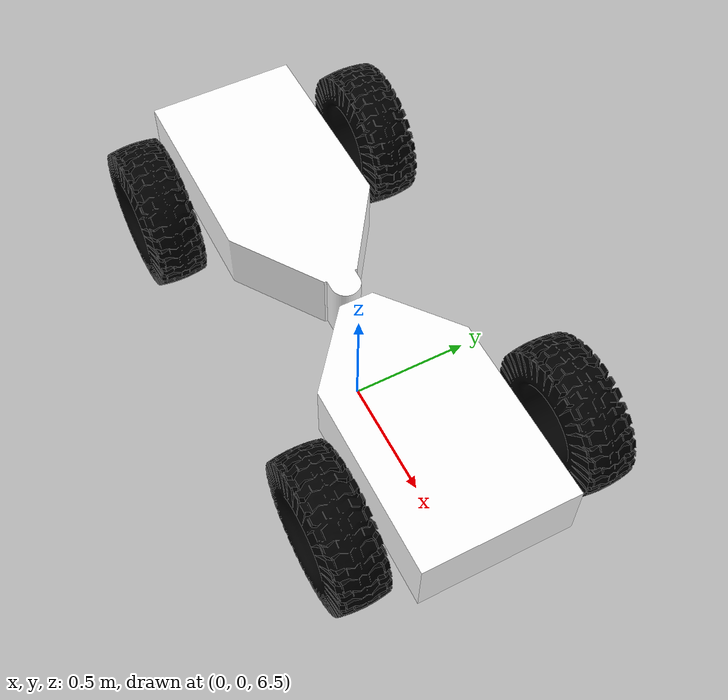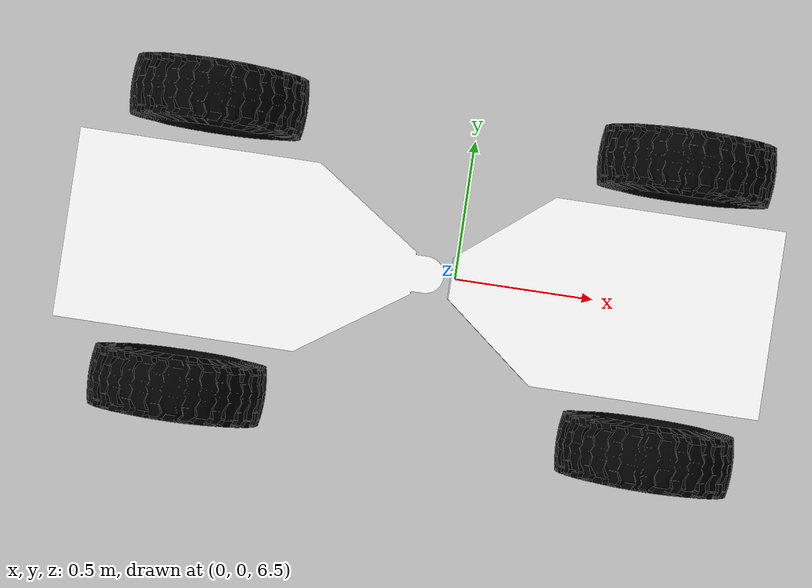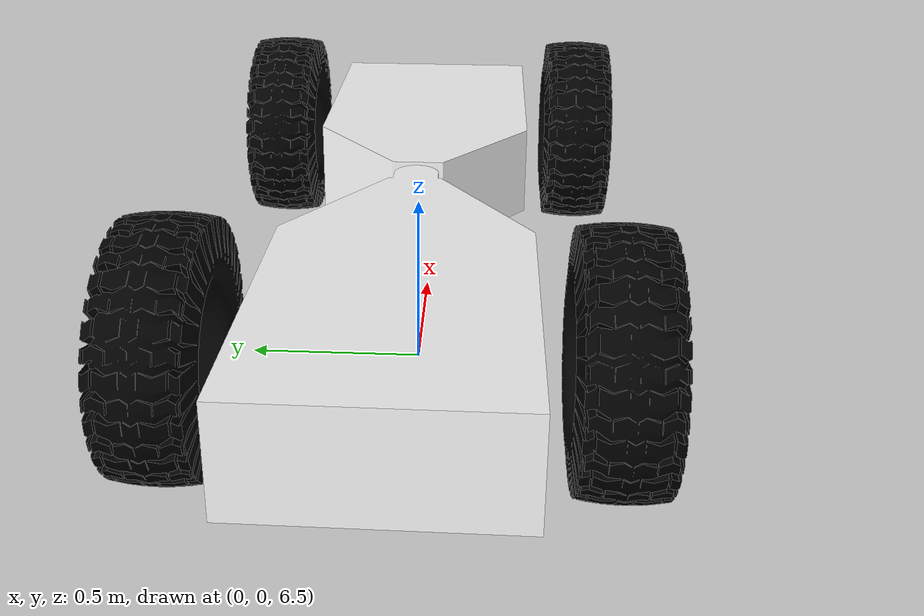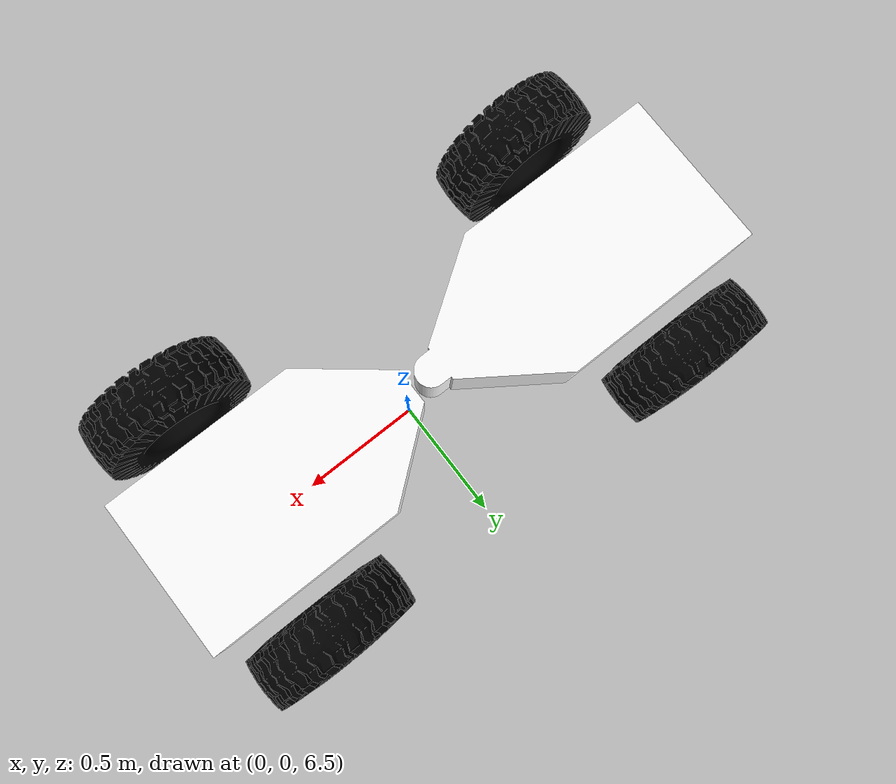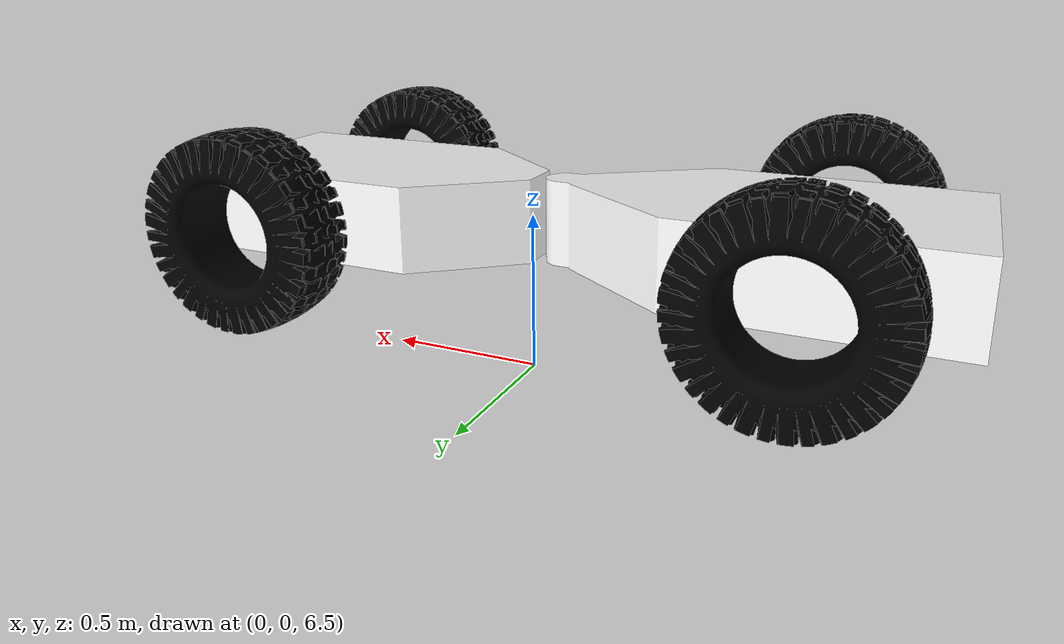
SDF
<sdf version="1.6">
 <world name="Terrain_world">
  <physics name="1ms" type="ignored"><dart><collision_detector>bullet</collision_detector></dart></physics>
  <light type="directional" name="sun">
   <pose>0 0 10 0 0 0</pose>
   <diffuse>0.8 0.8 0.8 1</diffuse>
   <specular>0.2 0.2 0.2 1</specular>
   <attenuation>
    <range>1000</range>
    <constant>0.9</constant>
    <linear>0.01</linear>
    <quadratic>0.001</quadratic>
   </attenuation>
   <direction>-0.5 0.1 -0.9</direction>
  </light>
  <plugin filename="ignition-gazebo-physics-system" name="ignition::gazebo::systems::Physics"/>
  <plugin filename="ignition-gazebo-user-commands-system" name="ignition::gazebo::systems::UserCommands"/>
  <plugin filename="ignition-gazebo-scene-broadcaster-system" name="ignition::gazebo::systems::SceneBroadcaster"/>
  <include><pose>0 0 7 0 0 0</pose><uri>model://wagon</uri></include>
 </world>
</sdf>

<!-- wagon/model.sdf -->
<sdf version='1.9'>
  <model name='wagon'>
    <link name='base_footprint'>
      <inertial>
        <pose>0.5528 0 0 0 0 0</pose>
        <mass>135.5</mass>
        <inertia>
          <ixx>21.228999999999999</ixx>
          <ixy>0</ixy>
          <ixz>0.0090000000000009205</ixz>
          <iyy>17.996999999999989</iyy>
          <iyz>0</iyz>
          <izz>6.188999999999993</izz>
        </inertia>
      </inertial>
      <collision name='base_footprint_fixed_joint_lump__base_link_collision'>
        <pose>0.5075 0 0 0 0 0</pose>
        <geometry>
          <box>
            <size>1.055 0.62 0.26</size>
          </box>
        </geometry>
      </collision>
      <visual name='base_footprint_fixed_joint_lump__base_link_visual'>
        <pose>0.6948 0 0 0 0 1.57</pose>
        <geometry>
          <mesh>
            <scale>0.001 0.001 0.001</scale>
            <uri>/home/daniel/master_ws/install/wagon_description/share/wagon_description/meshes/bases/Simplified_Front_Centered.stl</uri>
          </mesh>
        </geometry>
        <material>
          <diffuse>1 1 1 1</diffuse>
          <ambient>1 1 1 1</ambient>
        </material>
      </visual>
    </link>
    <joint name='hydrolic_joint' type='revolute'>
      <pose relative_to='base_footprint'>-0.08499999999999996 0 0 0 0 0</pose>
      <parent>base_footprint</parent>
      <child>hydrolic_link</child>
      <axis>
        <xyz>0 0 1</xyz>
        <limit>
          <lower>-0.55000000000000004</lower>
          <upper>0.55000000000000004</upper>
          <effort>1000</effort>
          <velocity>0.5</velocity>
        </limit>
        <dynamics>
          <spring_reference>0</spring_reference>
          <spring_stiffness>0</spring_stiffness>
        </dynamics>
      </axis>
    </joint>
    <link name='hydrolic_link'>
      <pose relative_to='hydrolic_joint'>0 0 0 0 0 0</pose>
      <inertial>
        <pose>-0.6446000000000001 0 0 0 0 0</pose>
        <mass>140.5</mass>
        <inertia>
          <ixx>6.1890000000000001</ixx>
          <ixy>0</ixy>
          <ixz>-0.0089999999999999993</ixz>
          <iyy>17.996999999999989</iyy>
          <iyz>0</iyz>
          <izz>21.228999999999989</izz>
        </inertia>
      </inertial>
      <collision name='hydrolic_link_fixed_joint_lump__rear_link_collision'>
        <pose>-0.6966000000000001 0 0 0 0 0</pose>
        <geometry>
          <box>
            <size>1.02 0.62 0.26</size>
          </box>
        </geometry>
      </collision>
      <visual name='hydrolic_link_fixed_joint_lump__rear_link_visual'>
        <pose>-0.7866000000000001 0 0 0 0 1.57</pose>
        <geometry>
          <mesh>
            <scale>0.001 0.001 0.001</scale>
            <uri>/home/daniel/master_ws/install/wagon_description/share/wagon_description/meshes/bases/Simplified_Back_Centered.stl</uri>
          </mesh>
        </geometry>
        <material>
          <diffuse>1 1 1 1</diffuse>
          <ambient>1 1 1 1</ambient>
        </material>
      </visual>
    </link>
    <joint name='wheel_rear_left_joint' type='revolute'>
      <pose relative_to='hydrolic_link'>-0.7866000000000001 0.4815 0 0 0 0</pose>
      <parent>hydrolic_link</parent>
      <child>wheel_rear_left_link</child>
      <axis>
        <xyz>0 1 0</xyz>
        <limit>
          <lower>-10000000000000000</lower>
          <upper>10000000000000000</upper>
        </limit>
        <dynamics>
          <spring_reference>0</spring_reference>
          <spring_stiffness>0</spring_stiffness>
        </dynamics>
      </axis>
    </joint>
    <link name='wheel_rear_left_link'>
      <pose relative_to='wheel_rear_left_joint'>0 0 0 0 0 0</pose>
      <inertial>
        <pose>0 0 0 1.57 0 0</pose>
        <mass>40.5</mass>
        <inertia>
          <ixx>1.05</ixx>
          <ixy>1.0783e-10</ixy>
          <ixz>-0.023</ixz>
          <iyy>1.8300000000000001</iyy>
          <iyz>-8.9799999999999993e-12</iyz>
          <izz>1.05</izz>
        </inertia>
      </inertial>
      <collision name='wheel_rear_left_link_collision'>
        <pose>0 0 0 1.57 0 0</pose>
        <geometry>
          <cylinder>
            <length>0.215</length>
            <radius>0.29399999999999998</radius>
          </cylinder>
        </geometry>
      </collision>
      <visual name='wheel_rear_left_link_visual'>
        <pose>0 0 0 1.57 0 0</pose>
        <geometry>
          <mesh>
            <scale>0.001 0.001 0.001</scale>
            <uri>/home/daniel/master_ws/install/wagon_description/share/wagon_description/meshes/wheels/Wheel.stl</uri>
          </mesh>
        </geometry>
        <material>
          <diffuse>0 0 0 1</diffuse>
          <ambient>0 0 0 1</ambient>
        </material>
      </visual>
    </link>
    <joint name='wheel_rear_right_joint' type='revolute'>
      <pose relative_to='hydrolic_link'>-0.7866000000000001 -0.4815 0 0 0 0</pose>
      <parent>hydrolic_link</parent>
      <child>wheel_rear_right_link</child>
      <axis>
        <xyz>0 1 0</xyz>
        <limit>
          <lower>-10000000000000000</lower>
          <upper>10000000000000000</upper>
        </limit>
        <dynamics>
          <spring_reference>0</spring_reference>
          <spring_stiffness>0</spring_stiffness>
        </dynamics>
      </axis>
    </joint>
    <link name='wheel_rear_right_link'>
      <pose relative_to='wheel_rear_right_joint'>0 0 0 0 0 0</pose>
      <inertial>
        <pose>0 0 0 0 0 0</pose>
        <mass>40.5</mass>
        <inertia>
          <ixx>1.05</ixx>
          <ixy>1.0783e-10</ixy>
          <ixz>-0.023</ixz>
          <iyy>1.8300000000000001</iyy>
          <iyz>-8.9799999999999993e-12</iyz>
          <izz>1.05</izz>
        </inertia>
      </inertial>
      <collision name='wheel_rear_right_link_collision'>
        <pose>0 0 0 1.57 0 0</pose>
        <geometry>
          <cylinder>
            <length>0.215</length>
            <radius>0.29399999999999998</radius>
          </cylinder>
        </geometry>
      </collision>
      <visual name='wheel_rear_right_link_visual'>
        <pose>0 0 0 1.57 0 0</pose>
        <geometry>
          <mesh>
            <scale>0.001 0.001 0.001</scale>
            <uri>/home/daniel/master_ws/install/wagon_description/share/wagon_description/meshes/wheels/Wheel.stl</uri>
          </mesh>
        </geometry>
        <material>
          <diffuse>0 0 0 1</diffuse>
          <ambient>0 0 0 1</ambient>
        </material>
      </visual>
    </link>
    <joint name='wheel_front_left_joint' type='revolute'>
      <pose relative_to='base_footprint'>0.6948 0.4815 0 0 0 0</pose>
      <parent>base_footprint</parent>
      <child>wheel_front_left_link</child>
      <axis>
        <xyz>0 1 0</xyz>
        <limit>
          <lower>-10000000000000000</lower>
          <upper>10000000000000000</upper>
        </limit>
        <dynamics>
          <spring_reference>0</spring_reference>
          <spring_stiffness>0</spring_stiffness>
        </dynamics>
      </axis>
    </joint>
    <link name='wheel_front_left_link'>
      <pose relative_to='wheel_front_left_joint'>0 0 0 0 0 0</pose>
      <inertial>
        <pose>0 0 0 1.57 0 0</pose>
        <mass>40.5</mass>
        <inertia>
          <ixx>1.05</ixx>
          <ixy>1.0783e-10</ixy>
          <ixz>-0.023</ixz>
          <iyy>1.8300000000000001</iyy>
          <iyz>-8.9799999999999993e-12</iyz>
          <izz>1.05</izz>
        </inertia>
      </inertial>
      <collision name='wheel_front_left_link_collision'>
        <pose>0 0 0 1.57 0 0</pose>
        <geometry>
          <cylinder>
            <length>0.215</length>
            <radius>0.29399999999999998</radius>
          </cylinder>
        </geometry>
      </collision>
      <visual name='wheel_front_left_link_visual'>
        <pose>0 0 0 1.57 0 0</pose>
        <geometry>
          <mesh>
            <scale>0.001 0.001 0.001</scale>
            <uri>/home/daniel/master_ws/install/wagon_description/share/wagon_description/meshes/wheels/Wheel.stl</uri>
          </mesh>
        </geometry>
        <material>
          <diffuse>0 0 0 1</diffuse>
          <ambient>0 0 0 1</ambient>
        </material>
      </visual>
    </link>
    <joint name='wheel_front_right_joint' type='revolute'>
      <pose relative_to='base_footprint'>0.6948 -0.4815 0 0 0 0</pose>
      <parent>base_footprint</parent>
      <child>wheel_front_right_link</child>
      <axis>
        <xyz>0 1 0</xyz>
        <limit>
          <lower>-10000000000000000</lower>
          <upper>10000000000000000</upper>
        </limit>
        <dynamics>
          <spring_reference>0</spring_reference>
          <spring_stiffness>0</spring_stiffness>
        </dynamics>
      </axis>
    </joint>
    <link name='wheel_front_right_link'>
      <pose relative_to='wheel_front_right_joint'>0 0 0 0 0 0</pose>
      <inertial>
        <pose>0 0 0 1.57 0 0</pose>
        <mass>40.5</mass>
        <inertia>
          <ixx>1.05</ixx>
          <ixy>1.0783e-10</ixy>
          <ixz>-0.023</ixz>
          <iyy>1.8300000000000001</iyy>
          <iyz>-8.9799999999999993e-12</iyz>
          <izz>1.05</izz>
        </inertia>
      </inertial>
      <collision name='wheel_front_right_link_collision'>
        <pose>0 0 0 1.57 0 0</pose>
        <geometry>
          <cylinder>
            <length>0.215</length>
            <radius>0.29199999999999998</radius>
          </cylinder>
        </geometry>
      </collision>
      <visual name='wheel_front_right_link_visual'>
        <pose>0 0 0 1.57 0 0</pose>
        <geometry>
          <mesh>
            <scale>0.001 0.001 0.001</scale>
            <uri>/home/daniel/master_ws/install/wagon_description/share/wagon_description/meshes/wheels/Wheel.stl</uri>
          </mesh>
        </geometry>
        <material>
          <diffuse>0 0 0 1</diffuse>
          <ambient>0 0 0 1</ambient>
        </material>
      </visual>
    </link>
    <plugin
        filename="ignition-gazebo-joint-state-publisher-system"
        name="ignition::gazebo::systems::JointStatePublisher">
    </plugin>

    <plugin
        filename="ignition-gazebo-pose-publisher-system"
        name="ignition::gazebo::systems::PosePublisher">
        <publish_link_pose>true</publish_link_pose>

        <use_pose_vector_msg>true</use_pose_vector_msg>
    </plugin>

    <plugin
        filename="ignition-gazebo-joint-position-controller-system"
        name="ignition::gazebo::systems::JointPositionController">
        <joint_name>hydrolic_joint</joint_name>
        <joint_index>0</joint_index>
        <p_gain>500</p_gain>
        <i_gain>0.1</i_gain>
        <d_gain>0.1</d_gain>
        <i_max>1</i_max>
        <i_min>-1</i_min>
        <cmd_max>1000</cmd_max>
        <cmd_offset>0</cmd_offset>

    </plugin>

  </model>
</sdf>
